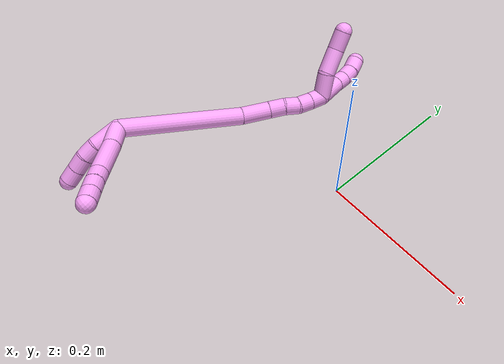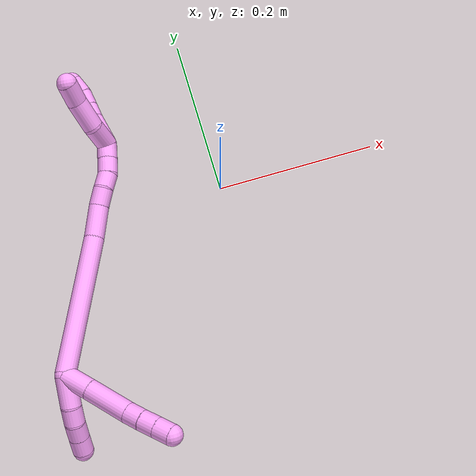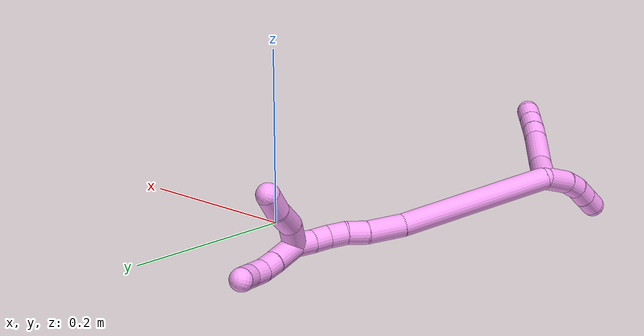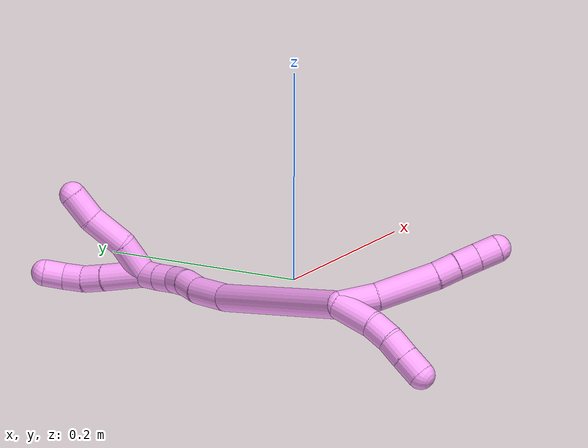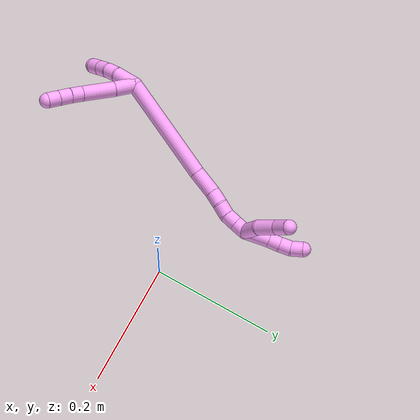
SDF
<sdf version="1.7">
 <world name="default">
  <model name="4">
   <static>0</static>
   <link name="4">
    <collision name="collision-cylinder-e_1_2_8">
     <pose>-0.014256 0.000443 0.00938 -0.047239 -0.988318 0.025453</pose>
     <geometry><cylinder><radius>0.0125</radius><length>0.034141</length></cylinder></geometry>
     <surface>
      <friction><ode><mu>1.16</mu><mu2>1.16</mu2><slip1>0</slip1><slip2>0</slip2></ode></friction>
      <contact><ode><kp>1e+06</kp><kd>1</kd><max_vel>0</max_vel><min_depth>0.001</min_depth></ode></contact>
     </surface>
    </collision>
    <visual name="visual-cylinder-e_1_2_8">
     <pose>-0.014256 0.000443 0.00938 -0.047239 -0.988318 0.025453</pose>
     <geometry><cylinder><radius>0.0125</radius><length>0.034141</length></cylinder></geometry>
     <material><ambient>1 0.65098 0.996078 1</ambient></material>
    </visual>
    <collision name="collision-cylinder-e_2_8_9">
     <pose>-0.05262 -0.001851 0.032503 0.196645 -1.04429 -0.113397</pose>
     <geometry><cylinder><radius>0.0125</radius><length>0.05577</length></cylinder></geometry>
     <surface>
      <friction><ode><mu>1.16</mu><mu2>1.16</mu2><slip1>0</slip1><slip2>0</slip2></ode></friction>
      <contact><ode><kp>1e+06</kp><kd>1</kd><max_vel>0</max_vel><min_depth>0.001</min_depth></ode></contact>
     </surface>
    </collision>
    <visual name="visual-cylinder-e_2_8_9">
     <pose>-0.05262 -0.001851 0.032503 0.196645 -1.04429 -0.113397</pose>
     <geometry><cylinder><radius>0.0125</radius><length>0.05577</length></cylinder></geometry>
     <material><ambient>1 0.65098 0.996078 1</ambient></material>
    </visual>
    <collision name="collision-cylinder-e_3_9_10">
     <pose>-0.085715 -0.006082 0.050388 0.345907 -1.11518 -0.217027</pose>
     <geometry><cylinder><radius>0.0125</radius><length>0.020015</length></cylinder></geometry>
     <surface>
      <friction><ode><mu>1.16</mu><mu2>1.16</mu2><slip1>0</slip1><slip2>0</slip2></ode></friction>
      <contact><ode><kp>1e+06</kp><kd>1</kd><max_vel>0</max_vel><min_depth>0.001</min_depth></ode></contact>
     </surface>
    </collision>
    <visual name="visual-cylinder-e_3_9_10">
     <pose>-0.085715 -0.006082 0.050388 0.345907 -1.11518 -0.217027</pose>
     <geometry><cylinder><radius>0.0125</radius><length>0.020015</length></cylinder></geometry>
     <material><ambient>1 0.65098 0.996078 1</ambient></material>
    </visual>
    <collision name="collision-cylinder-e_4_10_11">
     <pose>-0.103772 -0.008547 0.058691 0.229519 -1.13058 -0.145977</pose>
     <geometry><cylinder><radius>0.0125</radius><length>0.020053</length></cylinder></geometry>
     <surface>
      <friction><ode><mu>1.16</mu><mu2>1.16</mu2><slip1>0</slip1><slip2>0</slip2></ode></friction>
      <contact><ode><kp>1e+06</kp><kd>1</kd><max_vel>0</max_vel><min_depth>0.001</min_depth></ode></contact>
     </surface>
    </collision>
    <visual name="visual-cylinder-e_4_10_11">
     <pose>-0.103772 -0.008547 0.058691 0.229519 -1.13058 -0.145977</pose>
     <geometry><cylinder><radius>0.0125</radius><length>0.020053</length></cylinder></geometry>
     <material><ambient>1 0.65098 0.996078 1</ambient></material>
    </visual>
    <collision name="collision-cylinder-e_5_11_6">
     <pose>-0.121889 -0.0105 0.067025 0.230916 -1.12825 -0.146493</pose>
     <geometry><cylinder><radius>0.0125</radius><length>0.020021</length></cylinder></geometry>
     <surface>
      <friction><ode><mu>1.16</mu><mu2>1.16</mu2><slip1>0</slip1><slip2>0</slip2></ode></friction>
      <contact><ode><kp>1e+06</kp><kd>1</kd><max_vel>0</max_vel><min_depth>0.001</min_depth></ode></contact>
     </surface>
    </collision>
    <visual name="visual-cylinder-e_5_11_6">
     <pose>-0.121889 -0.0105 0.067025 0.230916 -1.12825 -0.146493</pose>
     <geometry><cylinder><radius>0.0125</radius><length>0.020021</length></cylinder></geometry>
     <material><ambient>1 0.65098 0.996078 1</ambient></material>
    </visual>
    <collision name="collision-cylinder-e_1_2_12">
     <pose>-0.000347 -0.001037 0.018699 0.055404 -0.018521 -0.000513</pose>
     <geometry><cylinder><radius>0.0125</radius><length>0.037461</length></cylinder></geometry>
     <surface>
      <friction><ode><mu>1.16</mu><mu2>1.16</mu2><slip1>0</slip1><slip2>0</slip2></ode></friction>
      <contact><ode><kp>1e+06</kp><kd>1</kd><max_vel>0</max_vel><min_depth>0.001</min_depth></ode></contact>
     </surface>
    </collision>
    <visual name="visual-cylinder-e_1_2_12">
     <pose>-0.000347 -0.001037 0.018699 0.055404 -0.018521 -0.000513</pose>
     <geometry><cylinder><radius>0.0125</radius><length>0.037461</length></cylinder></geometry>
     <material><ambient>1 0.65098 0.996078 1</ambient></material>
    </visual>
    <collision name="collision-cylinder-e_2_12_13">
     <pose>4.3e-05 -0.000599 0.047729 -0.141779 0.070446 -0.005004</pose>
     <geometry><cylinder><radius>0.0125</radius><length>0.020926</length></cylinder></geometry>
     <surface>
      <friction><ode><mu>1.16</mu><mu2>1.16</mu2><slip1>0</slip1><slip2>0</slip2></ode></friction>
      <contact><ode><kp>1e+06</kp><kd>1</kd><max_vel>0</max_vel><min_depth>0.001</min_depth></ode></contact>
     </surface>
    </collision>
    <visual name="visual-cylinder-e_2_12_13">
     <pose>4.3e-05 -0.000599 0.047729 -0.141779 0.070446 -0.005004</pose>
     <geometry><cylinder><radius>0.0125</radius><length>0.020926</length></cylinder></geometry>
     <material><ambient>1 0.65098 0.996078 1</ambient></material>
    </visual>
    <collision name="collision-cylinder-e_3_13_14">
     <pose>0.002212 0.004332 0.06778 -0.341712 0.138031 -0.023852</pose>
     <geometry><cylinder><radius>0.0125</radius><length>0.020828</length></cylinder></geometry>
     <surface>
      <friction><ode><mu>1.16</mu><mu2>1.16</mu2><slip1>0</slip1><slip2>0</slip2></ode></friction>
      <contact><ode><kp>1e+06</kp><kd>1</kd><max_vel>0</max_vel><min_depth>0.001</min_depth></ode></contact>
     </surface>
    </collision>
    <visual name="visual-cylinder-e_3_13_14">
     <pose>0.002212 0.004332 0.06778 -0.341712 0.138031 -0.023852</pose>
     <geometry><cylinder><radius>0.0125</radius><length>0.020828</length></cylinder></geometry>
     <material><ambient>1 0.65098 0.996078 1</ambient></material>
    </visual>
    <collision name="collision-cylinder-e_4_14_5">
     <pose>0.004826 0.011142 0.087264 -0.330784 0.113881 -0.019029</pose>
     <geometry><cylinder><radius>0.0125</radius><length>0.020786</length></cylinder></geometry>
     <surface>
      <friction><ode><mu>1.16</mu><mu2>1.16</mu2><slip1>0</slip1><slip2>0</slip2></ode></friction>
      <contact><ode><kp>1e+06</kp><kd>1</kd><max_vel>0</max_vel><min_depth>0.001</min_depth></ode></contact>
     </surface>
    </collision>
    <visual name="visual-cylinder-e_4_14_5">
     <pose>0.004826 0.011142 0.087264 -0.330784 0.113881 -0.019029</pose>
     <geometry><cylinder><radius>0.0125</radius><length>0.020786</length></cylinder></geometry>
     <material><ambient>1 0.65098 0.996078 1</ambient></material>
    </visual>
    <collision name="collision-cylinder-e_1_2_15">
     <pose>-0.004159 0.052075 -0.069782 -2.50049 -0.04773 0.143544</pose>
     <geometry><cylinder><radius>0.0125</radius><length>0.17434</length></cylinder></geometry>
     <surface>
      <friction><ode><mu>1.16</mu><mu2>1.16</mu2><slip1>0</slip1><slip2>0</slip2></ode></friction>
      <contact><ode><kp>1e+06</kp><kd>1</kd><max_vel>0</max_vel><min_depth>0.001</min_depth></ode></contact>
     </surface>
    </collision>
    <visual name="visual-cylinder-e_1_2_15">
     <pose>-0.004159 0.052075 -0.069782 -2.50049 -0.04773 0.143544</pose>
     <geometry><cylinder><radius>0.0125</radius><length>0.17434</length></cylinder></geometry>
     <material><ambient>1 0.65098 0.996078 1</ambient></material>
    </visual>
    <collision name="collision-cylinder-e_2_15_16">
     <pose>-0.009952 0.114295 -0.15776 -2.633 -0.078253 0.298971</pose>
     <geometry><cylinder><radius>0.0125</radius><length>0.041795</length></cylinder></geometry>
     <surface>
      <friction><ode><mu>1.16</mu><mu2>1.16</mu2><slip1>0</slip1><slip2>0</slip2></ode></friction>
      <contact><ode><kp>1e+06</kp><kd>1</kd><max_vel>0</max_vel><min_depth>0.001</min_depth></ode></contact>
     </surface>
    </collision>
    <visual name="visual-cylinder-e_2_15_16">
     <pose>-0.009952 0.114295 -0.15776 -2.633 -0.078253 0.298971</pose>
     <geometry><cylinder><radius>0.0125</radius><length>0.041795</length></cylinder></geometry>
     <material><ambient>1 0.65098 0.996078 1</ambient></material>
    </visual>
    <collision name="collision-cylinder-e_3_16_17">
     <pose>-0.014347 0.129068 -0.186106 -2.71374 -0.242669 1.02289</pose>
     <geometry><cylinder><radius>0.0125</radius><length>0.022983</length></cylinder></geometry>
     <surface>
      <friction><ode><mu>1.16</mu><mu2>1.16</mu2><slip1>0</slip1><slip2>0</slip2></ode></friction>
      <contact><ode><kp>1e+06</kp><kd>1</kd><max_vel>0</max_vel><min_depth>0.001</min_depth></ode></contact>
     </surface>
    </collision>
    <visual name="visual-cylinder-e_3_16_17">
     <pose>-0.014347 0.129068 -0.186106 -2.71374 -0.242669 1.02289</pose>
     <geometry><cylinder><radius>0.0125</radius><length>0.022983</length></cylinder></geometry>
     <material><ambient>1 0.65098 0.996078 1</ambient></material>
    </visual>
    <collision name="collision-cylinder-e_4_17_18">
     <pose>-0.01878 0.139469 -0.20442 -2.52622 -0.165723 0.511263</pose>
     <geometry><cylinder><radius>0.0125</radius><length>0.020275</length></cylinder></geometry>
     <surface>
      <friction><ode><mu>1.16</mu><mu2>1.16</mu2><slip1>0</slip1><slip2>0</slip2></ode></friction>
      <contact><ode><kp>1e+06</kp><kd>1</kd><max_vel>0</max_vel><min_depth>0.001</min_depth></ode></contact>
     </surface>
    </collision>
    <visual name="visual-cylinder-e_4_17_18">
     <pose>-0.01878 0.139469 -0.20442 -2.52622 -0.165723 0.511263</pose>
     <geometry><cylinder><radius>0.0125</radius><length>0.020275</length></cylinder></geometry>
     <material><ambient>1 0.65098 0.996078 1</ambient></material>
    </visual>
    <collision name="collision-cylinder-e_5_18_19">
     <pose>-0.019685 0.149606 -0.221582 -2.68983 0.076567 -0.330313</pose>
     <geometry><cylinder><radius>0.0125</radius><length>0.02006</length></cylinder></geometry>
     <surface>
      <friction><ode><mu>1.16</mu><mu2>1.16</mu2><slip1>0</slip1><slip2>0</slip2></ode></friction>
      <contact><ode><kp>1e+06</kp><kd>1</kd><max_vel>0</max_vel><min_depth>0.001</min_depth></ode></contact>
     </surface>
    </collision>
    <visual name="visual-cylinder-e_5_18_19">
     <pose>-0.019685 0.149606 -0.221582 -2.68983 0.076567 -0.330313</pose>
     <geometry><cylinder><radius>0.0125</radius><length>0.02006</length></cylinder></geometry>
     <material><ambient>1 0.65098 0.996078 1</ambient></material>
    </visual>
    <collision name="collision-cylinder-e_6_19_1">
     <pose>-0.018276 0.157913 -0.240045 -2.74707 0.062512 -0.310364</pose>
     <geometry><cylinder><radius>0.0125</radius><length>0.020546</length></cylinder></geometry>
     <surface>
      <friction><ode><mu>1.16</mu><mu2>1.16</mu2><slip1>0</slip1><slip2>0</slip2></ode></friction>
      <contact><ode><kp>1e+06</kp><kd>1</kd><max_vel>0</max_vel><min_depth>0.001</min_depth></ode></contact>
     </surface>
    </collision>
    <visual name="visual-cylinder-e_6_19_1">
     <pose>-0.018276 0.157913 -0.240045 -2.74707 0.062512 -0.310364</pose>
     <geometry><cylinder><radius>0.0125</radius><length>0.020546</length></cylinder></geometry>
     <material><ambient>1 0.65098 0.996078 1</ambient></material>
    </visual>
    <collision name="collision-cylinder-e_1_1_20">
     <pose>-0.017378 0.149634 -0.26195 2.36509 0.014732 0.036014</pose>
     <geometry><cylinder><radius>0.0125</radius><length>0.03488</length></cylinder></geometry>
     <surface>
      <friction><ode><mu>1.16</mu><mu2>1.16</mu2><slip1>0</slip1><slip2>0</slip2></ode></friction>
      <contact><ode><kp>1e+06</kp><kd>1</kd><max_vel>0</max_vel><min_depth>0.001</min_depth></ode></contact>
     </surface>
    </collision>
    <visual name="visual-cylinder-e_1_1_20">
     <pose>-0.017378 0.149634 -0.26195 2.36509 0.014732 0.036014</pose>
     <geometry><cylinder><radius>0.0125</radius><length>0.03488</length></cylinder></geometry>
     <material><ambient>1 0.65098 0.996078 1</ambient></material>
    </visual>
    <collision name="collision-cylinder-e_2_20_21">
     <pose>-0.014151 0.129128 -0.290692 2.67136 0.161 0.6497</pose>
     <geometry><cylinder><radius>0.0125</radius><length>0.037055</length></cylinder></geometry>
     <surface>
      <friction><ode><mu>1.16</mu><mu2>1.16</mu2><slip1>0</slip1><slip2>0</slip2></ode></friction>
      <contact><ode><kp>1e+06</kp><kd>1</kd><max_vel>0</max_vel><min_depth>0.001</min_depth></ode></contact>
     </surface>
    </collision>
    <visual name="visual-cylinder-e_2_20_21">
     <pose>-0.014151 0.129128 -0.290692 2.67136 0.161 0.6497</pose>
     <geometry><cylinder><radius>0.0125</radius><length>0.037055</length></cylinder></geometry>
     <material><ambient>1 0.65098 0.996078 1</ambient></material>
    </visual>
    <collision name="collision-cylinder-e_3_21_4">
     <pose>-0.011648 0.113018 -0.318635 2.54982 -0.033277 -0.109064</pose>
     <geometry><cylinder><radius>0.0125</radius><length>0.028066</length></cylinder></geometry>
     <surface>
      <friction><ode><mu>1.16</mu><mu2>1.16</mu2><slip1>0</slip1><slip2>0</slip2></ode></friction>
      <contact><ode><kp>1e+06</kp><kd>1</kd><max_vel>0</max_vel><min_depth>0.001</min_depth></ode></contact>
     </surface>
    </collision>
    <visual name="visual-cylinder-e_3_21_4">
     <pose>-0.011648 0.113018 -0.318635 2.54982 -0.033277 -0.109064</pose>
     <geometry><cylinder><radius>0.0125</radius><length>0.028066</length></cylinder></geometry>
     <material><ambient>1 0.65098 0.996078 1</ambient></material>
    </visual>
    <collision name="collision-cylinder-e_1_1_22">
     <pose>-0.007796 0.16798 -0.265751 -2.78088 0.515665 -1.93166</pose>
     <geometry><cylinder><radius>0.0125</radius><length>0.039904</length></cylinder></geometry>
     <surface>
      <friction><ode><mu>1.16</mu><mu2>1.16</mu2><slip1>0</slip1><slip2>0</slip2></ode></friction>
      <contact><ode><kp>1e+06</kp><kd>1</kd><max_vel>0</max_vel><min_depth>0.001</min_depth></ode></contact>
     </surface>
    </collision>
    <visual name="visual-cylinder-e_1_1_22">
     <pose>-0.007796 0.16798 -0.265751 -2.78088 0.515665 -1.93166</pose>
     <geometry><cylinder><radius>0.0125</radius><length>0.039904</length></cylinder></geometry>
     <material><ambient>1 0.65098 0.996078 1</ambient></material>
    </visual>
    <collision name="collision-cylinder-e_2_22_23">
     <pose>0.006361 0.177526 -0.290378 -2.75447 0.444955 -1.71363</pose>
     <geometry><cylinder><radius>0.0125</radius><length>0.020068</length></cylinder></geometry>
     <surface>
      <friction><ode><mu>1.16</mu><mu2>1.16</mu2><slip1>0</slip1><slip2>0</slip2></ode></friction>
      <contact><ode><kp>1e+06</kp><kd>1</kd><max_vel>0</max_vel><min_depth>0.001</min_depth></ode></contact>
     </surface>
    </collision>
    <visual name="visual-cylinder-e_2_22_23">
     <pose>0.006361 0.177526 -0.290378 -2.75447 0.444955 -1.71363</pose>
     <geometry><cylinder><radius>0.0125</radius><length>0.020068</length></cylinder></geometry>
     <material><ambient>1 0.65098 0.996078 1</ambient></material>
    </visual>
    <collision name="collision-cylinder-e_3_23_24">
     <pose>0.014337 0.182618 -0.307922 -2.96087 0.374332 -2.24911</pose>
     <geometry><cylinder><radius>0.0125</radius><length>0.020003</length></cylinder></geometry>
     <surface>
      <friction><ode><mu>1.16</mu><mu2>1.16</mu2><slip1>0</slip1><slip2>0</slip2></ode></friction>
      <contact><ode><kp>1e+06</kp><kd>1</kd><max_vel>0</max_vel><min_depth>0.001</min_depth></ode></contact>
     </surface>
    </collision>
    <visual name="visual-cylinder-e_3_23_24">
     <pose>0.014337 0.182618 -0.307922 -2.96087 0.374332 -2.24911</pose>
     <geometry><cylinder><radius>0.0125</radius><length>0.020003</length></cylinder></geometry>
     <material><ambient>1 0.65098 0.996078 1</ambient></material>
    </visual>
    <collision name="collision-cylinder-e_4_24_3">
     <pose>0.023047 0.183569 -0.325693 3.05794 0.528974 2.83495</pose>
     <geometry><cylinder><radius>0.0125</radius><length>0.020025</length></cylinder></geometry>
     <surface>
      <friction><ode><mu>1.16</mu><mu2>1.16</mu2><slip1>0</slip1><slip2>0</slip2></ode></friction>
      <contact><ode><kp>1e+06</kp><kd>1</kd><max_vel>0</max_vel><min_depth>0.001</min_depth></ode></contact>
     </surface>
    </collision>
    <visual name="visual-cylinder-e_4_24_3">
     <pose>0.023047 0.183569 -0.325693 3.05794 0.528974 2.83495</pose>
     <geometry><cylinder><radius>0.0125</radius><length>0.020025</length></cylinder></geometry>
     <material><ambient>1 0.65098 0.996078 1</ambient></material>
    </visual>
    <collision name="collision-sphere-3">
     <pose>0.0281 0.182847 -0.334307 0 -0 0</pose>
     <geometry><sphere><radius>0.0125</radius></sphere></geometry>
     <surface>
      <friction><ode><mu>1.16</mu><mu2>1.16</mu2><slip1>0</slip1><slip2>0</slip2></ode></friction>
      <contact><ode><kp>1e+06</kp><kd>1</kd><max_vel>0</max_vel><min_depth>0.001</min_depth></ode></contact>
     </surface>
    </collision>
    <visual name="visual-sphere-3">
     <pose>0.0281 0.182847 -0.334307 0 -0 0</pose>
     <geometry><sphere><radius>0.0125</radius></sphere></geometry>
     <material><ambient>1 0.65098 0.996078 1</ambient></material>
    </visual>
    <collision name="collision-sphere-24">
     <pose>0.017994 0.184291 -0.31708 0 -0 0</pose>
     <geometry><sphere><radius>0.0125</radius></sphere></geometry>
     <surface>
      <friction><ode><mu>1.16</mu><mu2>1.16</mu2><slip1>0</slip1><slip2>0</slip2></ode></friction>
      <contact><ode><kp>1e+06</kp><kd>1</kd><max_vel>0</max_vel><min_depth>0.001</min_depth></ode></contact>
     </surface>
    </collision>
    <visual name="visual-sphere-24">
     <pose>0.017994 0.184291 -0.31708 0 -0 0</pose>
     <geometry><sphere><radius>0.0125</radius></sphere></geometry>
     <material><ambient>1 0.65098 0.996078 1</ambient></material>
    </visual>
    <collision name="collision-sphere-23">
     <pose>0.01068 0.180945 -0.298765 0 -0 0</pose>
     <geometry><sphere><radius>0.0125</radius></sphere></geometry>
     <surface>
      <friction><ode><mu>1.16</mu><mu2>1.16</mu2><slip1>0</slip1><slip2>0</slip2></ode></friction>
      <contact><ode><kp>1e+06</kp><kd>1</kd><max_vel>0</max_vel><min_depth>0.001</min_depth></ode></contact>
     </surface>
    </collision>
    <visual name="visual-sphere-23">
     <pose>0.01068 0.180945 -0.298765 0 -0 0</pose>
     <geometry><sphere><radius>0.0125</radius></sphere></geometry>
     <material><ambient>1 0.65098 0.996078 1</ambient></material>
    </visual>
    <collision name="collision-sphere-22">
     <pose>0.002043 0.174107 -0.281992 0 -0 0</pose>
     <geometry><sphere><radius>0.0125</radius></sphere></geometry>
     <surface>
      <friction><ode><mu>1.16</mu><mu2>1.16</mu2><slip1>0</slip1><slip2>0</slip2></ode></friction>
      <contact><ode><kp>1e+06</kp><kd>1</kd><max_vel>0</max_vel><min_depth>0.001</min_depth></ode></contact>
     </surface>
    </collision>
    <visual name="visual-sphere-22">
     <pose>0.002043 0.174107 -0.281992 0 -0 0</pose>
     <geometry><sphere><radius>0.0125</radius></sphere></geometry>
     <material><ambient>1 0.65098 0.996078 1</ambient></material>
    </visual>
    <collision name="collision-sphere-4">
     <pose>-0.012115 0.105194 -0.330276 0 -0 0</pose>
     <geometry><sphere><radius>0.0125</radius></sphere></geometry>
     <surface>
      <friction><ode><mu>1.16</mu><mu2>1.16</mu2><slip1>0</slip1><slip2>0</slip2></ode></friction>
      <contact><ode><kp>1e+06</kp><kd>1</kd><max_vel>0</max_vel><min_depth>0.001</min_depth></ode></contact>
     </surface>
    </collision>
    <visual name="visual-sphere-4">
     <pose>-0.012115 0.105194 -0.330276 0 -0 0</pose>
     <geometry><sphere><radius>0.0125</radius></sphere></geometry>
     <material><ambient>1 0.65098 0.996078 1</ambient></material>
    </visual>
    <collision name="collision-sphere-21">
     <pose>-0.011181 0.120842 -0.306995 0 -0 0</pose>
     <geometry><sphere><radius>0.0125</radius></sphere></geometry>
     <surface>
      <friction><ode><mu>1.16</mu><mu2>1.16</mu2><slip1>0</slip1><slip2>0</slip2></ode></friction>
      <contact><ode><kp>1e+06</kp><kd>1</kd><max_vel>0</max_vel><min_depth>0.001</min_depth></ode></contact>
     </surface>
    </collision>
    <visual name="visual-sphere-21">
     <pose>-0.011181 0.120842 -0.306995 0 -0 0</pose>
     <geometry><sphere><radius>0.0125</radius></sphere></geometry>
     <material><ambient>1 0.65098 0.996078 1</ambient></material>
    </visual>
    <collision name="collision-sphere-20">
     <pose>-0.017121 0.137414 -0.27439 0 -0 0</pose>
     <geometry><sphere><radius>0.0125</radius></sphere></geometry>
     <surface>
      <friction><ode><mu>1.16</mu><mu2>1.16</mu2><slip1>0</slip1><slip2>0</slip2></ode></friction>
      <contact><ode><kp>1e+06</kp><kd>1</kd><max_vel>0</max_vel><min_depth>0.001</min_depth></ode></contact>
     </surface>
    </collision>
    <visual name="visual-sphere-20">
     <pose>-0.017121 0.137414 -0.27439 0 -0 0</pose>
     <geometry><sphere><radius>0.0125</radius></sphere></geometry>
     <material><ambient>1 0.65098 0.996078 1</ambient></material>
    </visual>
    <collision name="collision-sphere-6">
     <pose>-0.130935 -0.011481 0.071198 0 -0 0</pose>
     <geometry><sphere><radius>0.0125</radius></sphere></geometry>
     <surface>
      <friction><ode><mu>1.16</mu><mu2>1.16</mu2><slip1>0</slip1><slip2>0</slip2></ode></friction>
      <contact><ode><kp>1e+06</kp><kd>1</kd><max_vel>0</max_vel><min_depth>0.001</min_depth></ode></contact>
     </surface>
    </collision>
    <visual name="visual-sphere-6">
     <pose>-0.130935 -0.011481 0.071198 0 -0 0</pose>
     <geometry><sphere><radius>0.0125</radius></sphere></geometry>
     <material><ambient>1 0.65098 0.996078 1</ambient></material>
    </visual>
    <collision name="collision-sphere-11">
     <pose>-0.112843 -0.009519 0.062852 0 -0 0</pose>
     <geometry><sphere><radius>0.0125</radius></sphere></geometry>
     <surface>
      <friction><ode><mu>1.16</mu><mu2>1.16</mu2><slip1>0</slip1><slip2>0</slip2></ode></friction>
      <contact><ode><kp>1e+06</kp><kd>1</kd><max_vel>0</max_vel><min_depth>0.001</min_depth></ode></contact>
     </surface>
    </collision>
    <visual name="visual-sphere-11">
     <pose>-0.112843 -0.009519 0.062852 0 -0 0</pose>
     <geometry><sphere><radius>0.0125</radius></sphere></geometry>
     <material><ambient>1 0.65098 0.996078 1</ambient></material>
    </visual>
    <collision name="collision-sphere-10">
     <pose>-0.094702 -0.007575 0.054531 0 -0 0</pose>
     <geometry><sphere><radius>0.0125</radius></sphere></geometry>
     <surface>
      <friction><ode><mu>1.16</mu><mu2>1.16</mu2><slip1>0</slip1><slip2>0</slip2></ode></friction>
      <contact><ode><kp>1e+06</kp><kd>1</kd><max_vel>0</max_vel><min_depth>0.001</min_depth></ode></contact>
     </surface>
    </collision>
    <visual name="visual-sphere-10">
     <pose>-0.094702 -0.007575 0.054531 0 -0 0</pose>
     <geometry><sphere><radius>0.0125</radius></sphere></geometry>
     <material><ambient>1 0.65098 0.996078 1</ambient></material>
    </visual>
    <collision name="collision-sphere-9">
     <pose>-0.076729 -0.004589 0.046245 0 -0 0</pose>
     <geometry><sphere><radius>0.0125</radius></sphere></geometry>
     <surface>
      <friction><ode><mu>1.16</mu><mu2>1.16</mu2><slip1>0</slip1><slip2>0</slip2></ode></friction>
      <contact><ode><kp>1e+06</kp><kd>1</kd><max_vel>0</max_vel><min_depth>0.001</min_depth></ode></contact>
     </surface>
    </collision>
    <visual name="visual-sphere-9">
     <pose>-0.076729 -0.004589 0.046245 0 -0 0</pose>
     <geometry><sphere><radius>0.0125</radius></sphere></geometry>
     <material><ambient>1 0.65098 0.996078 1</ambient></material>
    </visual>
    <collision name="collision-sphere-2">
     <geometry><sphere><radius>0.0125</radius></sphere></geometry>
     <surface>
      <friction><ode><mu>1.16</mu><mu2>1.16</mu2><slip1>0</slip1><slip2>0</slip2></ode></friction>
      <contact><ode><kp>1e+06</kp><kd>1</kd><max_vel>0</max_vel><min_depth>0.001</min_depth></ode></contact>
     </surface>
    </collision>
    <visual name="visual-sphere-2">
     <geometry><sphere><radius>0.0125</radius></sphere></geometry>
     <material><ambient>1 0.65098 0.996078 1</ambient></material>
    </visual>
    <collision name="collision-sphere-19">
     <pose>-0.018918 0.153972 -0.230579 0 -0 0</pose>
     <geometry><sphere><radius>0.0125</radius></sphere></geometry>
     <surface>
      <friction><ode><mu>1.16</mu><mu2>1.16</mu2><slip1>0</slip1><slip2>0</slip2></ode></friction>
      <contact><ode><kp>1e+06</kp><kd>1</kd><max_vel>0</max_vel><min_depth>0.001</min_depth></ode></contact>
     </surface>
    </collision>
    <visual name="visual-sphere-19">
     <pose>-0.018918 0.153972 -0.230579 0 -0 0</pose>
     <geometry><sphere><radius>0.0125</radius></sphere></geometry>
     <material><ambient>1 0.65098 0.996078 1</ambient></material>
    </visual>
    <collision name="collision-sphere-8">
     <pose>-0.028512 0.000887 0.01876 0 -0 0</pose>
     <geometry><sphere><radius>0.0125</radius></sphere></geometry>
     <surface>
      <friction><ode><mu>1.16</mu><mu2>1.16</mu2><slip1>0</slip1><slip2>0</slip2></ode></friction>
      <contact><ode><kp>1e+06</kp><kd>1</kd><max_vel>0</max_vel><min_depth>0.001</min_depth></ode></contact>
     </surface>
    </collision>
    <visual name="visual-sphere-8">
     <pose>-0.028512 0.000887 0.01876 0 -0 0</pose>
     <geometry><sphere><radius>0.0125</radius></sphere></geometry>
     <material><ambient>1 0.65098 0.996078 1</ambient></material>
    </visual>
    <collision name="collision-sphere-12">
     <pose>-0.000694 -0.002074 0.037397 0 -0 0</pose>
     <geometry><sphere><radius>0.0125</radius></sphere></geometry>
     <surface>
      <friction><ode><mu>1.16</mu><mu2>1.16</mu2><slip1>0</slip1><slip2>0</slip2></ode></friction>
      <contact><ode><kp>1e+06</kp><kd>1</kd><max_vel>0</max_vel><min_depth>0.001</min_depth></ode></contact>
     </surface>
    </collision>
    <visual name="visual-sphere-12">
     <pose>-0.000694 -0.002074 0.037397 0 -0 0</pose>
     <geometry><sphere><radius>0.0125</radius></sphere></geometry>
     <material><ambient>1 0.65098 0.996078 1</ambient></material>
    </visual>
    <collision name="collision-sphere-13">
     <pose>0.000779 0.000875 0.058061 0 -0 0</pose>
     <geometry><sphere><radius>0.0125</radius></sphere></geometry>
     <surface>
      <friction><ode><mu>1.16</mu><mu2>1.16</mu2><slip1>0</slip1><slip2>0</slip2></ode></friction>
      <contact><ode><kp>1e+06</kp><kd>1</kd><max_vel>0</max_vel><min_depth>0.001</min_depth></ode></contact>
     </surface>
    </collision>
    <visual name="visual-sphere-13">
     <pose>0.000779 0.000875 0.058061 0 -0 0</pose>
     <geometry><sphere><radius>0.0125</radius></sphere></geometry>
     <material><ambient>1 0.65098 0.996078 1</ambient></material>
    </visual>
    <collision name="collision-sphere-14">
     <pose>0.003645 0.007788 0.077498 0 -0 0</pose>
     <geometry><sphere><radius>0.0125</radius></sphere></geometry>
     <surface>
      <friction><ode><mu>1.16</mu><mu2>1.16</mu2><slip1>0</slip1><slip2>0</slip2></ode></friction>
      <contact><ode><kp>1e+06</kp><kd>1</kd><max_vel>0</max_vel><min_depth>0.001</min_depth></ode></contact>
     </surface>
    </collision>
    <visual name="visual-sphere-14">
     <pose>0.003645 0.007788 0.077498 0 -0 0</pose>
     <geometry><sphere><radius>0.0125</radius></sphere></geometry>
     <material><ambient>1 0.65098 0.996078 1</ambient></material>
    </visual>
    <collision name="collision-sphere-5">
     <pose>0.006007 0.014496 0.09703 0 -0 0</pose>
     <geometry><sphere><radius>0.0125</radius></sphere></geometry>
     <surface>
      <friction><ode><mu>1.16</mu><mu2>1.16</mu2><slip1>0</slip1><slip2>0</slip2></ode></friction>
      <contact><ode><kp>1e+06</kp><kd>1</kd><max_vel>0</max_vel><min_depth>0.001</min_depth></ode></contact>
     </surface>
    </collision>
    <visual name="visual-sphere-5">
     <pose>0.006007 0.014496 0.09703 0 -0 0</pose>
     <geometry><sphere><radius>0.0125</radius></sphere></geometry>
     <material><ambient>1 0.65098 0.996078 1</ambient></material>
    </visual>
    <collision name="collision-sphere-15">
     <pose>-0.008318 0.10415 -0.139563 0 -0 0</pose>
     <geometry><sphere><radius>0.0125</radius></sphere></geometry>
     <surface>
      <friction><ode><mu>1.16</mu><mu2>1.16</mu2><slip1>0</slip1><slip2>0</slip2></ode></friction>
      <contact><ode><kp>1e+06</kp><kd>1</kd><max_vel>0</max_vel><min_depth>0.001</min_depth></ode></contact>
     </surface>
    </collision>
    <visual name="visual-sphere-15">
     <pose>-0.008318 0.10415 -0.139563 0 -0 0</pose>
     <geometry><sphere><radius>0.0125</radius></sphere></geometry>
     <material><ambient>1 0.65098 0.996078 1</ambient></material>
    </visual>
    <collision name="collision-sphere-16">
     <pose>-0.011585 0.12444 -0.175957 0 -0 0</pose>
     <geometry><sphere><radius>0.0125</radius></sphere></geometry>
     <surface>
      <friction><ode><mu>1.16</mu><mu2>1.16</mu2><slip1>0</slip1><slip2>0</slip2></ode></friction>
      <contact><ode><kp>1e+06</kp><kd>1</kd><max_vel>0</max_vel><min_depth>0.001</min_depth></ode></contact>
     </surface>
    </collision>
    <visual name="visual-sphere-16">
     <pose>-0.011585 0.12444 -0.175957 0 -0 0</pose>
     <geometry><sphere><radius>0.0125</radius></sphere></geometry>
     <material><ambient>1 0.65098 0.996078 1</ambient></material>
    </visual>
    <collision name="collision-sphere-17">
     <pose>-0.017108 0.133697 -0.196256 0 -0 0</pose>
     <geometry><sphere><radius>0.0125</radius></sphere></geometry>
     <surface>
      <friction><ode><mu>1.16</mu><mu2>1.16</mu2><slip1>0</slip1><slip2>0</slip2></ode></friction>
      <contact><ode><kp>1e+06</kp><kd>1</kd><max_vel>0</max_vel><min_depth>0.001</min_depth></ode></contact>
     </surface>
    </collision>
    <visual name="visual-sphere-17">
     <pose>-0.017108 0.133697 -0.196256 0 -0 0</pose>
     <geometry><sphere><radius>0.0125</radius></sphere></geometry>
     <material><ambient>1 0.65098 0.996078 1</ambient></material>
    </visual>
    <collision name="collision-sphere-18">
     <pose>-0.020453 0.14524 -0.212584 0 -0 0</pose>
     <geometry><sphere><radius>0.0125</radius></sphere></geometry>
     <surface>
      <friction><ode><mu>1.16</mu><mu2>1.16</mu2><slip1>0</slip1><slip2>0</slip2></ode></friction>
      <contact><ode><kp>1e+06</kp><kd>1</kd><max_vel>0</max_vel><min_depth>0.001</min_depth></ode></contact>
     </surface>
    </collision>
    <visual name="visual-sphere-18">
     <pose>-0.020453 0.14524 -0.212584 0 -0 0</pose>
     <geometry><sphere><radius>0.0125</radius></sphere></geometry>
     <material><ambient>1 0.65098 0.996078 1</ambient></material>
    </visual>
    <collision name="collision-sphere-1">
     <pose>-0.017635 0.161854 -0.24951 0 -0 0</pose>
     <geometry><sphere><radius>0.0125</radius></sphere></geometry>
     <surface>
      <friction><ode><mu>1.16</mu><mu2>1.16</mu2><slip1>0</slip1><slip2>0</slip2></ode></friction>
      <contact><ode><kp>1e+06</kp><kd>1</kd><max_vel>0</max_vel><min_depth>0.001</min_depth></ode></contact>
     </surface>
    </collision>
    <visual name="visual-sphere-1">
     <pose>-0.017635 0.161854 -0.24951 0 -0 0</pose>
     <geometry><sphere><radius>0.0125</radius></sphere></geometry>
     <material><ambient>1 0.65098 0.996078 1</ambient></material>
    </visual>
    <inertial>
     <pose>-0.017384 0.075127 -0.111917 0 -0 0</pose>
     <mass>0.75</mass>
     <inertia>
      <ixx>0.000542</ixx>
      <ixy>0</ixy>
      <ixz>0</ixz>
      <iyy>-0.00026</iyy>
      <iyz>0</iyz>
      <izz>-0.00025</izz>
     </inertia>
    </inertial>
   </link>
   <pose>-0.239478 -0.180994 0.061538 -1.97419 0.445689 2.86268</pose>
  </model>
 </world>
</sdf>
